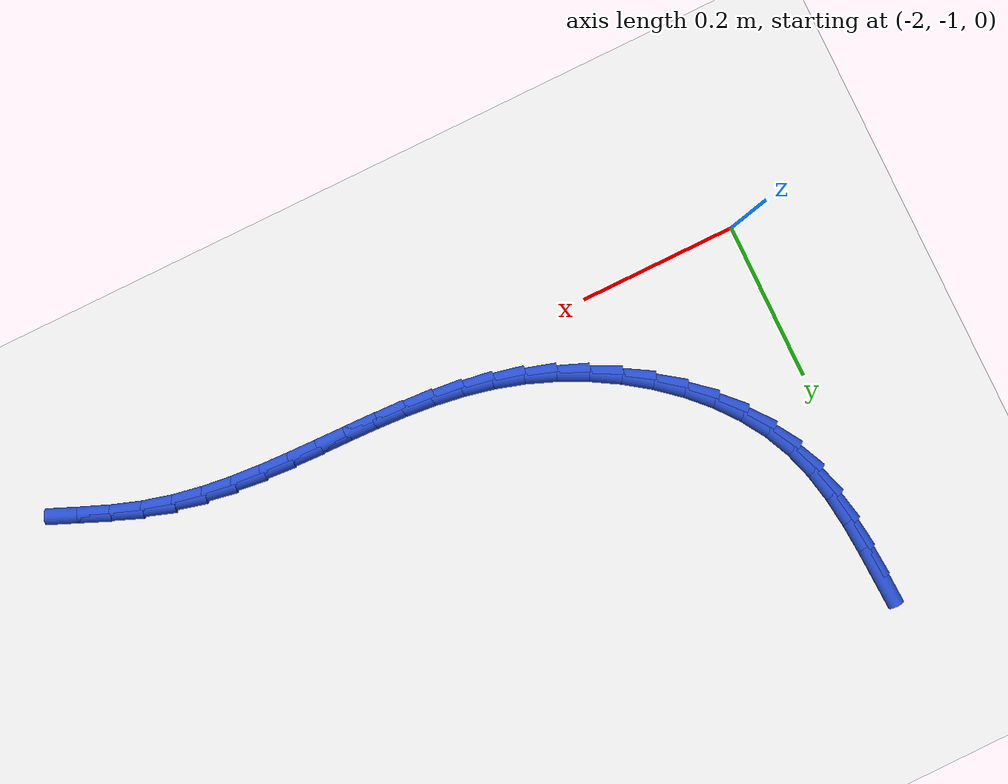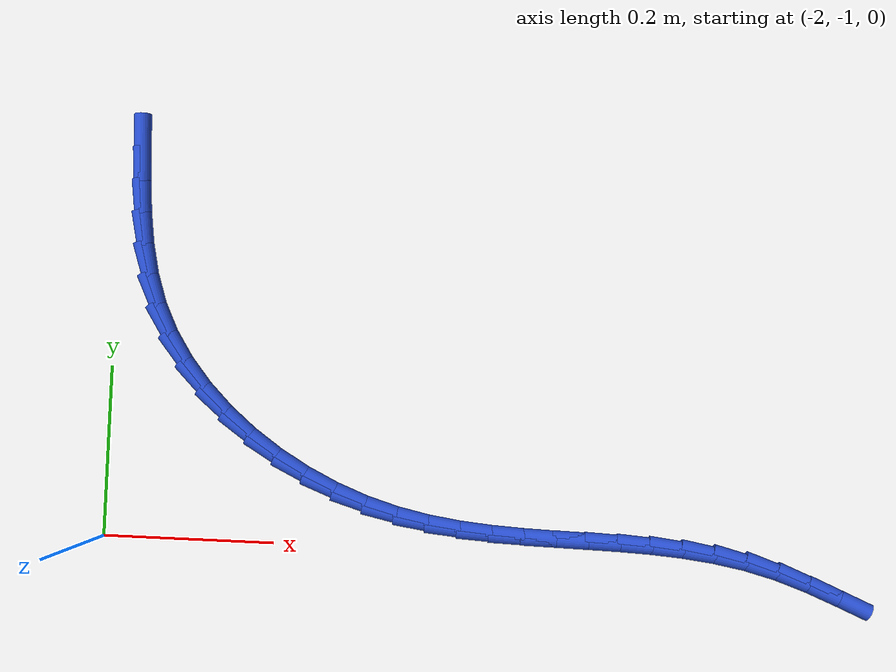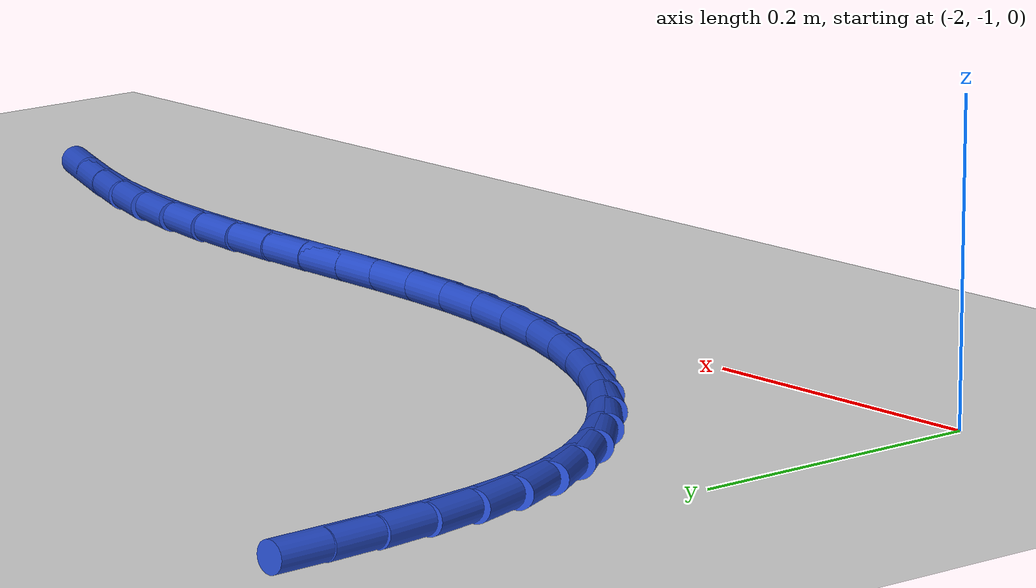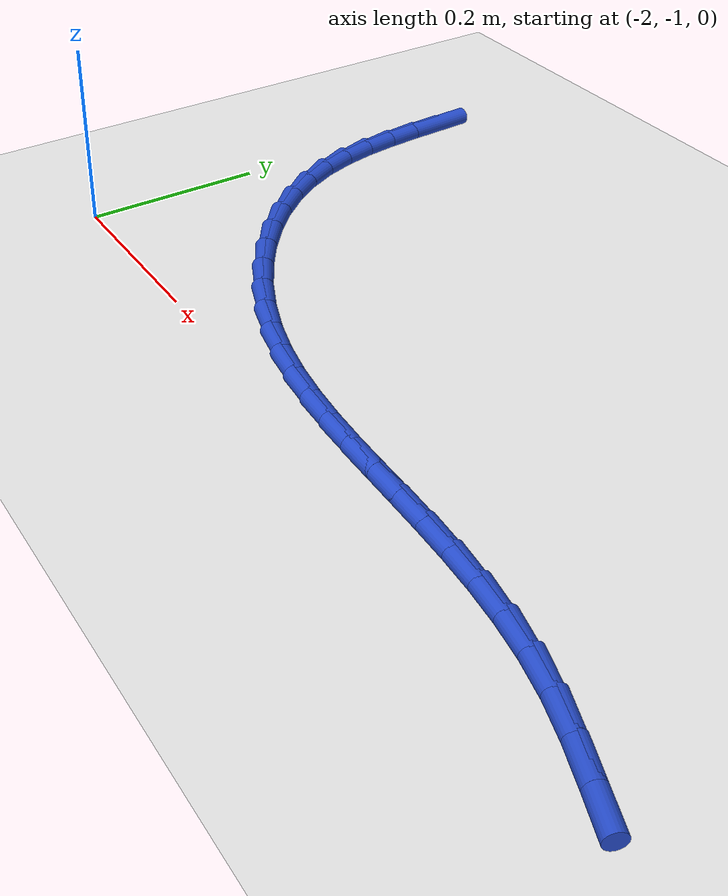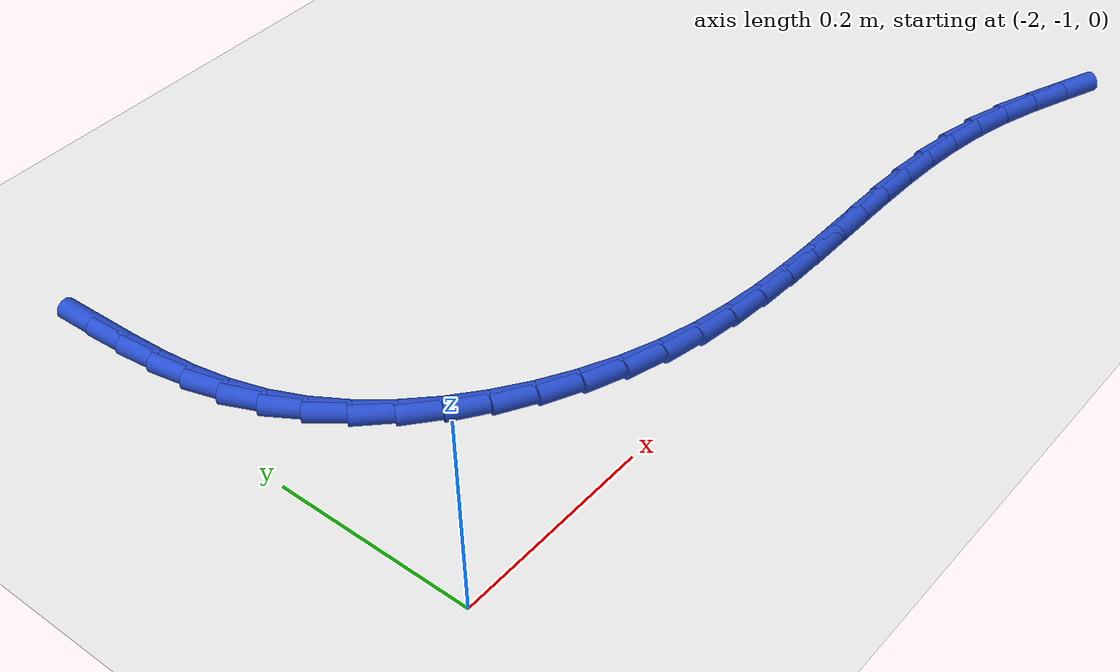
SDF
<sdf version="1.6">
 <world name="default">
  <model name="ground_plane">
   <static>1</static>
   <link name="link">
    <collision name="collision">
     <geometry><plane><normal>0 0 1</normal><size>100 100</size></plane></geometry>
     <surface><friction><ode><mu>100</mu><mu2>50</mu2></ode></friction></surface>
    </collision>
    <visual name="visual">
     <cast_shadows>0</cast_shadows>
     <geometry><plane><normal>0 0 1</normal><size>100 100</size></plane></geometry>
     <material>
      <script><uri>file://media/materials/scripts/gazebo.material</uri><name>Gazebo/WhiteGlow</name></script>
     </material>
    </visual>
   </link>
  </model>
  <model name="line">
   <link name="link_105">
    <pose>-1.9744798419123286 -0.5420814600522659 0.01 0 1.57 -1.5295121658153679</pose>
    <collision name="collision">
     <geometry><cylinder><radius>0.01</radius><length>0.08</length></cylinder></geometry>
    </collision>
    <visual name="visual">
     <material>
      <script><name>Gazebo/Blue</name><uri>file://media/materials/scripts/gazebo.material</uri></script>
     </material>
     <geometry><cylinder><radius>0.01</radius><length>0.08</length></cylinder></geometry>
    </visual>
   </link>
   <link name="link_106">
    <pose>-1.9729033661787287 -0.5802457331174269 0.01 0 1.57 -1.5001378198912807</pose>
    <collision name="collision">
     <geometry><cylinder><radius>0.01</radius><length>0.08</length></cylinder></geometry>
    </collision>
    <visual name="visual">
     <material>
      <script><name>Gazebo/Blue</name><uri>file://media/materials/scripts/gazebo.material</uri></script>
     </material>
     <geometry><cylinder><radius>0.01</radius><length>0.08</length></cylinder></geometry>
    </visual>
   </link>
   <link name="link_107">
    <pose>-1.9702373157578685 -0.6179144045492403 0.01 0 1.57 -1.4468273062112287</pose>
    <collision name="collision">
     <geometry><cylinder><radius>0.01</radius><length>0.08</length></cylinder></geometry>
    </collision>
    <visual name="visual">
     <material>
      <script><name>Gazebo/Blue</name><uri>file://media/materials/scripts/gazebo.material</uri></script>
     </material>
     <geometry><cylinder><radius>0.01</radius><length>0.08</length></cylinder></geometry>
    </visual>
   </link>
   <link name="link_108">
    <pose>-1.9656356161608342 -0.6548438077724305 0.01 0 1.57 -1.3682133945042545</pose>
    <collision name="collision">
     <geometry><cylinder><radius>0.01</radius><length>0.08</length></cylinder></geometry>
    </collision>
    <visual name="visual">
     <material>
      <script><name>Gazebo/Blue</name><uri>file://media/materials/scripts/gazebo.material</uri></script>
     </material>
     <geometry><cylinder><radius>0.01</radius><length>0.08</length></cylinder></geometry>
    </visual>
   </link>
   <link name="link_109">
    <pose>-1.9582521928987118 -0.6907902762117212 0.01 0 1.57 -1.2636856119516953</pose>
    <collision name="collision">
     <geometry><cylinder><radius>0.01</radius><length>0.08</length></cylinder></geometry>
    </collision>
    <visual name="visual">
     <material>
      <script><name>Gazebo/Blue</name><uri>file://media/materials/scripts/gazebo.material</uri></script>
     </material>
     <geometry><cylinder><radius>0.01</radius><length>0.08</length></cylinder></geometry>
    </visual>
   </link>
   <link name="link_110">
    <pose>-1.9472409714825858 -0.7255101432918345 0.01 0 1.57 -1.1371078216053025</pose>
    <collision name="collision">
     <geometry><cylinder><radius>0.01</radius><length>0.08</length></cylinder></geometry>
    </collision>
    <visual name="visual">
     <material>
      <script><name>Gazebo/Blue</name><uri>file://media/materials/scripts/gazebo.material</uri></script>
     </material>
     <geometry><cylinder><radius>0.01</radius><length>0.08</length></cylinder></geometry>
    </visual>
   </link>
   <link name="link_111">
    <pose>-1.9318419474427042 -0.7587627003389258 0.01 0 1.57 -1.0120091695442457</pose>
    <collision name="collision">
     <geometry><cylinder><radius>0.01</radius><length>0.08</length></cylinder></geometry>
    </collision>
    <visual name="visual">
     <material>
      <script><name>Gazebo/Blue</name><uri>file://media/materials/scripts/gazebo.material</uri></script>
     </material>
     <geometry><cylinder><radius>0.01</radius><length>0.08</length></cylinder></geometry>
    </visual>
   </link>
   <link name="link_112">
    <pose>-1.9121010521792858 -0.7903349356505989 0.01 0 1.57 -0.8993235922208535</pose>
    <collision name="collision">
     <geometry><cylinder><radius>0.01</radius><length>0.08</length></cylinder></geometry>
    </collision>
    <visual name="visual">
     <material>
      <script><name>Gazebo/Blue</name><uri>file://media/materials/scripts/gazebo.material</uri></script>
     </material>
     <geometry><cylinder><radius>0.01</radius><length>0.08</length></cylinder></geometry>
    </visual>
   </link>
   <link name="link_113">
    <pose>-1.888504565600186 -0.8200289706392594 0.01 0 1.57 -0.7974310615185287</pose>
    <collision name="collision">
     <geometry><cylinder><radius>0.01</radius><length>0.08</length></cylinder></geometry>
    </collision>
    <visual name="visual">
     <material>
      <script><name>Gazebo/Blue</name><uri>file://media/materials/scripts/gazebo.material</uri></script>
     </material>
     <geometry><cylinder><radius>0.01</radius><length>0.08</length></cylinder></geometry>
    </visual>
   </link>
   <link name="link_114">
    <pose>-1.8615432364697015 -0.8476470802950274 0.01 0 1.57 -0.7041894571833069</pose>
    <collision name="collision">
     <geometry><cylinder><radius>0.01</radius><length>0.08</length></cylinder></geometry>
    </collision>
    <visual name="visual">
     <material>
      <script><name>Gazebo/Blue</name><uri>file://media/materials/scripts/gazebo.material</uri></script>
     </material>
     <geometry><cylinder><radius>0.01</radius><length>0.08</length></cylinder></geometry>
    </visual>
   </link>
   <link name="link_115">
    <pose>-1.831707813552129 -0.8729915396080244 0.01 0 1.57 -0.6173596404226215</pose>
    <collision name="collision">
     <geometry><cylinder><radius>0.01</radius><length>0.08</length></cylinder></geometry>
    </collision>
    <visual name="visual">
     <material>
      <script><name>Gazebo/Blue</name><uri>file://media/materials/scripts/gazebo.material</uri></script>
     </material>
     <geometry><cylinder><radius>0.01</radius><length>0.08</length></cylinder></geometry>
    </visual>
   </link>
   <link name="link_116">
    <pose>-1.7994890456117658 -0.8958646235683697 0.01 0 1.57 -0.5347346474233126</pose>
    <collision name="collision">
     <geometry><cylinder><radius>0.01</radius><length>0.08</length></cylinder></geometry>
    </collision>
    <visual name="visual">
     <material>
      <script><name>Gazebo/Blue</name><uri>file://media/materials/scripts/gazebo.material</uri></script>
     </material>
     <geometry><cylinder><radius>0.01</radius><length>0.08</length></cylinder></geometry>
    </visual>
   </link>
   <link name="link_117">
    <pose>-1.765377681412909 -0.9160686071661844 0.01 0 1.57 -0.45415421788730104</pose>
    <collision name="collision">
     <geometry><cylinder><radius>0.01</radius><length>0.08</length></cylinder></geometry>
    </collision>
    <visual name="visual">
     <material>
      <script><name>Gazebo/Blue</name><uri>file://media/materials/scripts/gazebo.material</uri></script>
     </material>
     <geometry><cylinder><radius>0.01</radius><length>0.08</length></cylinder></geometry>
    </visual>
   </link>
   <link name="link_118">
    <pose>-1.7298644697198555 -0.9334057653915891 0.01 0 1.57 -0.3734546858486142</pose>
    <collision name="collision">
     <geometry><cylinder><radius>0.01</radius><length>0.08</length></cylinder></geometry>
    </collision>
    <visual name="visual">
     <material>
      <script><name>Gazebo/Blue</name><uri>file://media/materials/scripts/gazebo.material</uri></script>
     </material>
     <geometry><cylinder><radius>0.01</radius><length>0.08</length></cylinder></geometry>
    </visual>
   </link>
   <link name="link_119">
    <pose>-1.693440159296902 -0.9476783732347045 0.01 0 1.57 -0.2908437270466866</pose>
    <collision name="collision">
     <geometry><cylinder><radius>0.01</radius><length>0.08</length></cylinder></geometry>
    </collision>
    <visual name="visual">
     <material>
      <script><name>Gazebo/Blue</name><uri>file://media/materials/scripts/gazebo.material</uri></script>
     </material>
     <geometry><cylinder><radius>0.01</radius><length>0.08</length></cylinder></geometry>
    </visual>
   </link>
   <link name="link_120">
    <pose>-1.6565811808462252 -0.9587114405233214 0.01 0 1.57 -0.21259341999812328</pose>
    <collision name="collision">
     <geometry><cylinder><radius>0.01</radius><length>0.08</length></cylinder></geometry>
    </collision>
    <visual name="visual">
     <material>
      <script><name>Gazebo/Blue</name><uri>file://media/materials/scripts/gazebo.material</uri></script>
     </material>
     <geometry><cylinder><radius>0.01</radius><length>0.08</length></cylinder></geometry>
    </visual>
   </link>
   <link name="link_121">
    <pose>-1.6195244218109748 -0.9667103342218072 0.01 0 1.57 -0.1463270895966763</pose>
    <collision name="collision">
     <geometry><cylinder><radius>0.01</radius><length>0.08</length></cylinder></geometry>
    </collision>
    <visual name="visual">
     <material>
      <script><name>Gazebo/Blue</name><uri>file://media/materials/scripts/gazebo.material</uri></script>
     </material>
     <geometry><cylinder><radius>0.01</radius><length>0.08</length></cylinder></geometry>
    </visual>
   </link>
   <link name="link_122">
    <pose>-1.5823085054031223 -0.9721952338071456 0.01 0 1.57 -0.09346913066900495</pose>
    <collision name="collision">
     <geometry><cylinder><radius>0.01</radius><length>0.08</length></cylinder></geometry>
    </collision>
    <visual name="visual">
     <material>
      <script><name>Gazebo/Blue</name><uri>file://media/materials/scripts/gazebo.material</uri></script>
     </material>
     <geometry><cylinder><radius>0.01</radius><length>0.08</length></cylinder></geometry>
    </visual>
   </link>
   <link name="link_123">
    <pose>-1.54496608526523 -0.9756957974965554 0.01 0 1.57 -0.054595527001057104</pose>
    <collision name="collision">
     <geometry><cylinder><radius>0.01</radius><length>0.08</length></cylinder></geometry>
    </collision>
    <visual name="visual">
     <material>
      <script><name>Gazebo/Blue</name><uri>file://media/materials/scripts/gazebo.material</uri></script>
     </material>
     <geometry><cylinder><radius>0.01</radius><length>0.08</length></cylinder></geometry>
    </visual>
   </link>
   <link name="link_124">
    <pose>-1.5075298150398613 -0.9777416835072547 0.01 0 1.57 -0.02988289580389853</pose>
    <collision name="collision">
     <geometry><cylinder><radius>0.01</radius><length>0.08</length></cylinder></geometry>
    </collision>
    <visual name="visual">
     <material>
      <script><name>Gazebo/Blue</name><uri>file://media/materials/scripts/gazebo.material</uri></script>
     </material>
     <geometry><cylinder><radius>0.01</radius><length>0.08</length></cylinder></geometry>
    </visual>
   </link>
   <link name="link_125">
    <pose>-1.470032348369579 -0.9788625500564618 0.01 0 1.57 -0.01933099048354449</pose>
    <collision name="collision">
     <geometry><cylinder><radius>0.01</radius><length>0.08</length></cylinder></geometry>
    </collision>
    <visual name="visual">
     <material>
      <script><name>Gazebo/Blue</name><uri>file://media/materials/scripts/gazebo.material</uri></script>
     </material>
     <geometry><cylinder><radius>0.01</radius><length>0.08</length></cylinder></geometry>
    </visual>
   </link>
   <link name="link_126">
    <pose>-1.4325063388969448 -0.9795880553613945 0.01 0 1.57 -0.022910669970075064</pose>
    <collision name="collision">
     <geometry><cylinder><radius>0.01</radius><length>0.08</length></cylinder></geometry>
    </collision>
    <visual name="visual">
     <material>
      <script><name>Gazebo/Blue</name><uri>file://media/materials/scripts/gazebo.material</uri></script>
     </material>
     <geometry><cylinder><radius>0.01</radius><length>0.08</length></cylinder></geometry>
    </visual>
   </link>
   <link name="link_127">
    <pose>-1.394984440264523 -0.9804478576392712 0.01 0 1.57 -0.04062727935324957</pose>
    <collision name="collision">
     <geometry><cylinder><radius>0.01</radius><length>0.08</length></cylinder></geometry>
    </collision>
    <visual name="visual">
     <material>
      <script><name>Gazebo/Blue</name><uri>file://media/materials/scripts/gazebo.material</uri></script>
     </material>
     <geometry><cylinder><radius>0.01</radius><length>0.08</length></cylinder></geometry>
    </visual>
   </link>
   <link name="link_128">
    <pose>-1.3574993061148763 -0.9819716151073105 0.01 0 1.57 -0.07249916729347158</pose>
    <collision name="collision">
     <geometry><cylinder><radius>0.01</radius><length>0.08</length></cylinder></geometry>
    </collision>
    <visual name="visual">
     <material>
      <script><name>Gazebo/Blue</name><uri>file://media/materials/scripts/gazebo.material</uri></script>
     </material>
     <geometry><cylinder><radius>0.01</radius><length>0.08</length></cylinder></geometry>
    </visual>
   </link>
   <link name="link_129">
    <pose>-1.320083590090567 -0.9846889859827302 0.01 0 1.57 -0.11845143065967066</pose>
    <collision name="collision">
     <geometry><cylinder><radius>0.01</radius><length>0.08</length></cylinder></geometry>
    </collision>
    <visual name="visual">
     <material>
      <script><name>Gazebo/Blue</name><uri>file://media/materials/scripts/gazebo.material</uri></script>
     </material>
     <geometry><cylinder><radius>0.01</radius><length>0.08</length></cylinder></geometry>
    </visual>
   </link>
   <link name="link_130">
    <pose>-1.2827699458341582 -0.9891296284827489 0.01 0 1.57 -0.17812855093558455</pose>
    <collision name="collision">
     <geometry><cylinder><radius>0.01</radius><length>0.08</length></cylinder></geometry>
    </collision>
    <visual name="visual">
     <material>
      <script><name>Gazebo/Blue</name><uri>file://media/materials/scripts/gazebo.material</uri></script>
     </material>
     <geometry><cylinder><radius>0.01</radius><length>0.08</length></cylinder></geometry>
    </visual>
   </link>
   <link name="link_131">
    <pose>-1.2455910269882113 -0.9958232008245845 0.01 0 1.57 -0.2506482866030308</pose>
    <collision name="collision">
     <geometry><cylinder><radius>0.01</radius><length>0.08</length></cylinder></geometry>
    </collision>
    <visual name="visual">
     <material>
      <script><name>Gazebo/Blue</name><uri>file://media/materials/scripts/gazebo.material</uri></script>
     </material>
     <geometry><cylinder><radius>0.01</radius><length>0.08</length></cylinder></geometry>
    </visual>
   </link>
   <link name="link_132">
    <pose>-1.2085794871952917 -1.0052993612254557 0.01 0 1.57 -0.3296689270160168</pose>
    <collision name="collision">
     <geometry><cylinder><radius>0.01</radius><length>0.08</length></cylinder></geometry>
    </collision>
    <visual name="visual">
     <material>
      <script><name>Gazebo/Blue</name><uri>file://media/materials/scripts/gazebo.material</uri></script>
     </material>
     <geometry><cylinder><radius>0.01</radius><length>0.08</length></cylinder></geometry>
    </visual>
   </link>
   <link name="link_133">
    <pose>-1.1717720117136308 -1.0178932227745958 0.01 0 1.57 -0.3825239169454114</pose>
    <collision name="collision">
     <geometry><cylinder><radius>0.01</radius><length>0.08</length></cylinder></geometry>
    </collision>
    <visual name="visual">
     <material>
      <script><name>Gazebo/Blue</name><uri>file://media/materials/scripts/gazebo.material</uri></script>
     </material>
     <geometry><cylinder><radius>0.01</radius><length>0.08</length></cylinder></geometry>
    </visual>
   </link>
   <link name="link_134">
    <pose>-1.1352331701617693 -1.032594342117291 0.01 0 1.57 -0.39827912593951653</pose>
    <collision name="collision">
     <geometry><cylinder><radius>0.01</radius><length>0.08</length></cylinder></geometry>
    </collision>
    <visual name="visual">
     <material>
      <script><name>Gazebo/Blue</name><uri>file://media/materials/scripts/gazebo.material</uri></script>
     </material>
     <geometry><cylinder><radius>0.01</radius><length>0.08</length></cylinder></geometry>
    </visual>
   </link>
  </model>
 </world>
</sdf>
